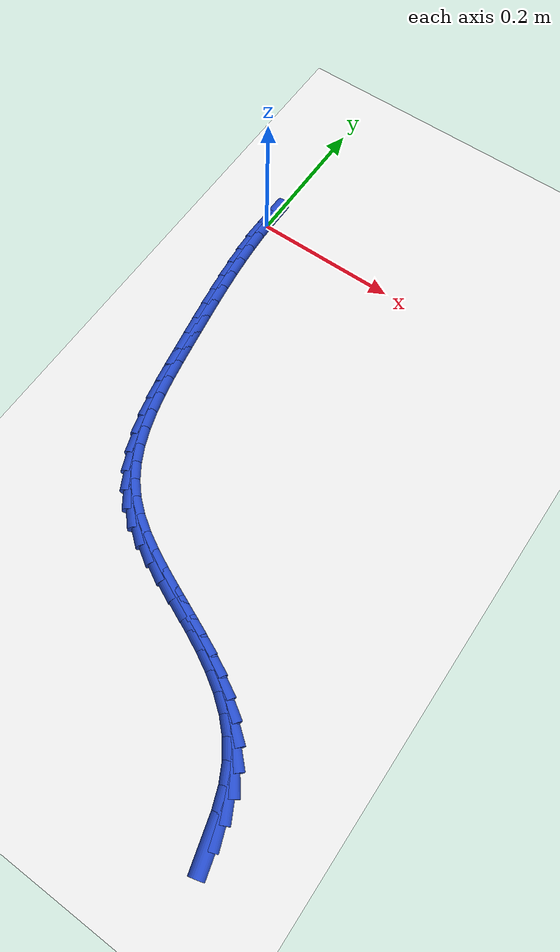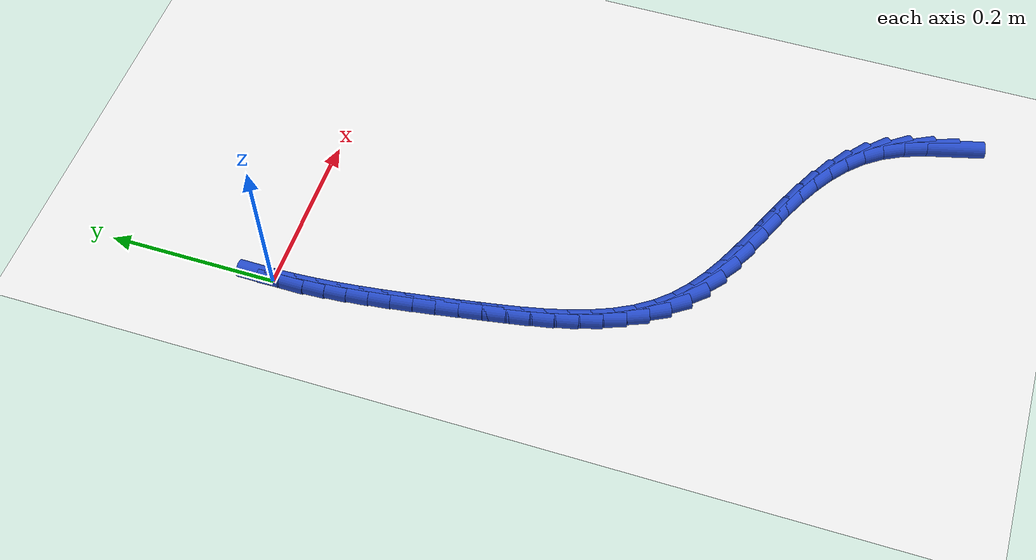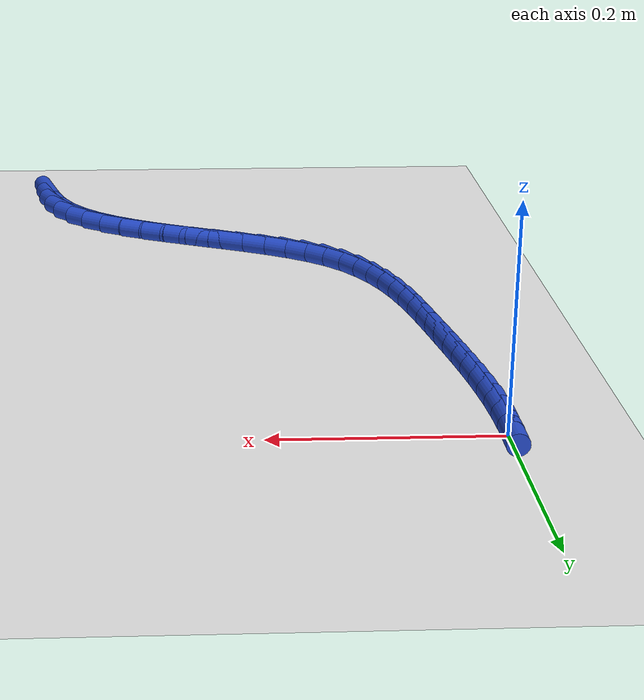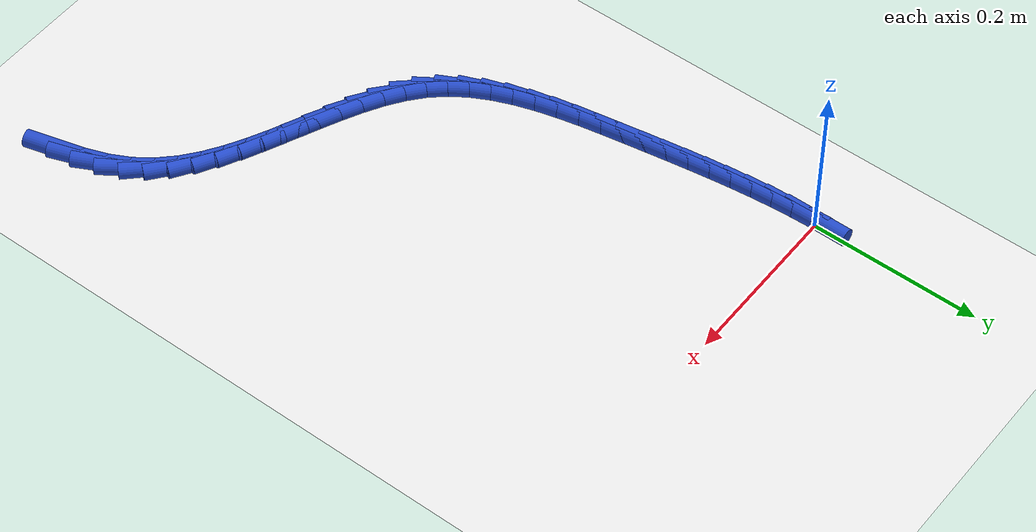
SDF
<sdf version="1.6">
 <world name="default">
  <model name="ground_plane">
   <static>1</static>
   <link name="link">
    <collision name="collision">
     <geometry><plane><normal>0 0 1</normal><size>100 100</size></plane></geometry>
     <surface><friction><ode><mu>100</mu><mu2>50</mu2></ode></friction></surface>
    </collision>
    <visual name="visual">
     <cast_shadows>0</cast_shadows>
     <geometry><plane><normal>0 0 1</normal><size>100 100</size></plane></geometry>
     <material>
      <script><uri>file://media/materials/scripts/gazebo.material</uri><name>Gazebo/WhiteGlow</name></script>
     </material>
    </visual>
   </link>
  </model>
  <model name="line">
   <link name="link_246">
    <pose>0.4147877214502893 -0.6989046707956664 0.01 0 1.57 -1.3147282547382568</pose>
    <collision name="collision">
     <geometry><cylinder><radius>0.01</radius><length>0.08</length></cylinder></geometry>
    </collision>
    <visual name="visual">
     <material>
      <script><name>Gazebo/Blue</name><uri>file://media/materials/scripts/gazebo.material</uri></script>
     </material>
     <geometry><cylinder><radius>0.01</radius><length>0.08</length></cylinder></geometry>
    </visual>
   </link>
   <link name="link_247">
    <pose>0.4074190213846468 -0.6707600676429514 0.01 0 1.57 -1.224963007741213</pose>
    <collision name="collision">
     <geometry><cylinder><radius>0.01</radius><length>0.08</length></cylinder></geometry>
    </collision>
    <visual name="visual">
     <material>
      <script><name>Gazebo/Blue</name><uri>file://media/materials/scripts/gazebo.material</uri></script>
     </material>
     <geometry><cylinder><radius>0.01</radius><length>0.08</length></cylinder></geometry>
    </visual>
   </link>
   <link name="link_248">
    <pose>0.397948434049088 -0.6444757891560651 0.01 0 1.57 -1.0963671185091795</pose>
    <collision name="collision">
     <geometry><cylinder><radius>0.01</radius><length>0.08</length></cylinder></geometry>
    </collision>
    <visual name="visual">
     <material>
      <script><name>Gazebo/Blue</name><uri>file://media/materials/scripts/gazebo.material</uri></script>
     </material>
     <geometry><cylinder><radius>0.01</radius><length>0.08</length></cylinder></geometry>
    </visual>
   </link>
   <link name="link_249">
    <pose>0.3857775104919784 -0.6207762273079381 0.01 0 1.57 -0.9403106625023065</pose>
    <collision name="collision">
     <geometry><cylinder><radius>0.01</radius><length>0.08</length></cylinder></geometry>
    </collision>
    <visual name="visual">
     <material>
      <script><name>Gazebo/Blue</name><uri>file://media/materials/scripts/gazebo.material</uri></script>
     </material>
     <geometry><cylinder><radius>0.01</radius><length>0.08</length></cylinder></geometry>
    </visual>
   </link>
   <link name="link_250">
    <pose>0.3706336356868376 -0.6000271810951412 0.01 0 1.57 -0.7953965708621923</pose>
    <collision name="collision">
     <geometry><cylinder><radius>0.01</radius><length>0.08</length></cylinder></geometry>
    </collision>
    <visual name="visual">
     <material>
      <script><name>Gazebo/Blue</name><uri>file://media/materials/scripts/gazebo.material</uri></script>
     </material>
     <geometry><cylinder><radius>0.01</radius><length>0.08</length></cylinder></geometry>
    </visual>
   </link>
   <link name="link_251">
    <pose>0.3528704698723867 -0.5819052090944088 0.01 0 1.57 -0.6726089075219118</pose>
    <collision name="collision">
     <geometry><cylinder><radius>0.01</radius><length>0.08</length></cylinder></geometry>
    </collision>
    <visual name="visual">
     <material>
      <script><name>Gazebo/Blue</name><uri>file://media/materials/scripts/gazebo.material</uri></script>
     </material>
     <geometry><cylinder><radius>0.01</radius><length>0.08</length></cylinder></geometry>
    </visual>
   </link>
   <link name="link_252">
    <pose>0.33291272353556356 -0.5660086763058944 0.01 0 1.57 -0.5747485906140026</pose>
    <collision name="collision">
     <geometry><cylinder><radius>0.01</radius><length>0.08</length></cylinder></geometry>
    </collision>
    <visual name="visual">
     <material>
      <script><name>Gazebo/Blue</name><uri>file://media/materials/scripts/gazebo.material</uri></script>
     </material>
     <geometry><cylinder><radius>0.01</radius><length>0.08</length></cylinder></geometry>
    </visual>
   </link>
   <link name="link_253">
    <pose>0.3111851071633075 -0.5519359477297521 0.01 0 1.57 -0.5015289717296727</pose>
    <collision name="collision">
     <geometry><cylinder><radius>0.01</radius><length>0.08</length></cylinder></geometry>
    </collision>
    <visual name="visual">
     <material>
      <script><name>Gazebo/Blue</name><uri>file://media/materials/scripts/gazebo.material</uri></script>
     </material>
     <geometry><cylinder><radius>0.01</radius><length>0.08</length></cylinder></geometry>
    </visual>
   </link>
   <link name="link_254">
    <pose>0.28811233124255625 -0.539285388366135 0.01 0 1.57 -0.45135003992694056</pose>
    <collision name="collision">
     <geometry><cylinder><radius>0.01</radius><length>0.08</length></cylinder></geometry>
    </collision>
    <visual name="visual">
     <material>
      <script><name>Gazebo/Blue</name><uri>file://media/materials/scripts/gazebo.material</uri></script>
     </material>
     <geometry><cylinder><radius>0.01</radius><length>0.08</length></cylinder></geometry>
    </visual>
   </link>
   <link name="link_255">
    <pose>0.26411910626024787 -0.527655363215197 0.01 0 1.57 -0.4225513968826254</pose>
    <collision name="collision">
     <geometry><cylinder><radius>0.01</radius><length>0.08</length></cylinder></geometry>
    </collision>
    <visual name="visual">
     <material>
      <script><name>Gazebo/Blue</name><uri>file://media/materials/scripts/gazebo.material</uri></script>
     </material>
     <geometry><cylinder><radius>0.01</radius><length>0.08</length></cylinder></geometry>
    </visual>
   </link>
   <link name="link_256">
    <pose>0.2396301427033208 -0.5166442372770913 0.01 0 1.57 -0.4140792082237176</pose>
    <collision name="collision">
     <geometry><cylinder><radius>0.01</radius><length>0.08</length></cylinder></geometry>
    </collision>
    <visual name="visual">
     <material>
      <script><name>Gazebo/Blue</name><uri>file://media/materials/scripts/gazebo.material</uri></script>
     </material>
     <geometry><cylinder><radius>0.01</radius><length>0.08</length></cylinder></geometry>
    </visual>
   </link>
   <link name="link_257">
    <pose>0.21507015105871324 -0.5058503755519717 0.01 0 1.57 -0.42578371415519617</pose>
    <collision name="collision">
     <geometry><cylinder><radius>0.01</radius><length>0.08</length></cylinder></geometry>
    </collision>
    <visual name="visual">
     <material>
      <script><name>Gazebo/Blue</name><uri>file://media/materials/scripts/gazebo.material</uri></script>
     </material>
     <geometry><cylinder><radius>0.01</radius><length>0.08</length></cylinder></geometry>
    </visual>
   </link>
   <link name="link_258">
    <pose>0.19086384181336327 -0.4948721430399913 0.01 0 1.57 -0.4585220222922525</pose>
    <collision name="collision">
     <geometry><cylinder><radius>0.01</radius><length>0.08</length></cylinder></geometry>
    </collision>
    <visual name="visual">
     <material>
      <script><name>Gazebo/Blue</name><uri>file://media/materials/scripts/gazebo.material</uri></script>
     </material>
     <geometry><cylinder><radius>0.01</radius><length>0.08</length></cylinder></geometry>
    </visual>
   </link>
   <link name="link_259">
    <pose>0.16743592545420938 -0.48330790474130425 0.01 0 1.57 -0.5141112055387586</pose>
    <collision name="collision">
     <geometry><cylinder><radius>0.01</radius><length>0.08</length></cylinder></geometry>
    </collision>
    <visual name="visual">
     <material>
      <script><name>Gazebo/Blue</name><uri>file://media/materials/scripts/gazebo.material</uri></script>
     </material>
     <geometry><cylinder><radius>0.01</radius><length>0.08</length></cylinder></geometry>
    </visual>
   </link>
   <link name="link_260">
    <pose>0.14521111246818957 -0.4707560256560635 0.01 0 1.57 -0.5950220393723967</pose>
    <collision name="collision">
     <geometry><cylinder><radius>0.01</radius><length>0.08</length></cylinder></geometry>
    </collision>
    <visual name="visual">
     <material>
      <script><name>Gazebo/Blue</name><uri>file://media/materials/scripts/gazebo.material</uri></script>
     </material>
     <geometry><cylinder><radius>0.01</radius><length>0.08</length></cylinder></geometry>
    </visual>
   </link>
   <link name="link_261">
    <pose>0.12461411334224151 -0.45681487078442246 0.01 0 1.57 -0.7035309989739501</pose>
    <collision name="collision">
     <geometry><cylinder><radius>0.01</radius><length>0.08</length></cylinder></geometry>
    </collision>
    <visual name="visual">
     <material>
      <script><name>Gazebo/Blue</name><uri>file://media/materials/scripts/gazebo.material</uri></script>
     </material>
     <geometry><cylinder><radius>0.01</radius><length>0.08</length></cylinder></geometry>
    </visual>
   </link>
   <link name="link_262">
    <pose>0.10606963856330485 -0.44108280512653547 0.01 0 1.57 -0.838602283269499</pose>
    <collision name="collision">
     <geometry><cylinder><radius>0.01</radius><length>0.08</length></cylinder></geometry>
    </collision>
    <visual name="visual">
     <material>
      <script><name>Gazebo/Blue</name><uri>file://media/materials/scripts/gazebo.material</uri></script>
     </material>
     <geometry><cylinder><radius>0.01</radius><length>0.08</length></cylinder></geometry>
    </visual>
   </link>
   <link name="link_263">
    <pose>0.08997878449989616 -0.4231817321295111 0.01 0 1.57 -0.9747074143699089</pose>
    <collision name="collision">
     <geometry><cylinder><radius>0.01</radius><length>0.08</length></cylinder></geometry>
    </collision>
    <visual name="visual">
     <material>
      <script><name>Gazebo/Blue</name><uri>file://media/materials/scripts/gazebo.material</uri></script>
     </material>
     <geometry><cylinder><radius>0.01</radius><length>0.08</length></cylinder></geometry>
    </visual>
   </link>
   <link name="link_264">
    <pose>0.07636315451384901 -0.40311183216143615 0.01 0 1.57 -1.0905757728185108</pose>
    <collision name="collision">
     <geometry><cylinder><radius>0.01</radius><length>0.08</length></cylinder></geometry>
    </collision>
    <visual name="visual">
     <material>
      <script><name>Gazebo/Blue</name><uri>file://media/materials/scripts/gazebo.material</uri></script>
     </material>
     <geometry><cylinder><radius>0.01</radius><length>0.08</length></cylinder></geometry>
    </visual>
   </link>
   <link name="link_265">
    <pose>0.06493823420084444 -0.3811784224018713 0.01 0 1.57 -1.1853698464484208</pose>
    <collision name="collision">
     <geometry><cylinder><radius>0.01</radius><length>0.08</length></cylinder></geometry>
    </collision>
    <visual name="visual">
     <material>
      <script><name>Gazebo/Blue</name><uri>file://media/materials/scripts/gazebo.material</uri></script>
     </material>
     <geometry><cylinder><radius>0.01</radius><length>0.08</length></cylinder></geometry>
    </visual>
   </link>
   <link name="link_266">
    <pose>0.05541078279730983 -0.3576955184260052 0.01 0 1.57 -1.2606038794214065</pose>
    <collision name="collision">
     <geometry><cylinder><radius>0.01</radius><length>0.08</length></cylinder></geometry>
    </collision>
    <visual name="visual">
     <material>
      <script><name>Gazebo/Blue</name><uri>file://media/materials/scripts/gazebo.material</uri></script>
     </material>
     <geometry><cylinder><radius>0.01</radius><length>0.08</length></cylinder></geometry>
    </visual>
   </link>
   <link name="link_267">
    <pose>0.04748755953967242 -0.33297713580902616 0.01 0 1.57 -1.318406552469889</pose>
    <collision name="collision">
     <geometry><cylinder><radius>0.01</radius><length>0.08</length></cylinder></geometry>
    </collision>
    <visual name="visual">
     <material>
      <script><name>Gazebo/Blue</name><uri>file://media/materials/scripts/gazebo.material</uri></script>
     </material>
     <geometry><cylinder><radius>0.01</radius><length>0.08</length></cylinder></geometry>
    </visual>
   </link>
   <link name="link_268">
    <pose>0.04087532366435955 -0.30733729012612254 0.01 0 1.57 -1.3607935195099103</pose>
    <collision name="collision">
     <geometry><cylinder><radius>0.01</radius><length>0.08</length></cylinder></geometry>
    </collision>
    <visual name="visual">
     <material>
      <script><name>Gazebo/Blue</name><uri>file://media/materials/scripts/gazebo.material</uri></script>
     </material>
     <geometry><cylinder><radius>0.01</radius><length>0.08</length></cylinder></geometry>
    </visual>
   </link>
   <link name="link_269">
    <pose>0.03528083440779849 -0.2810899969524828 0.01 0 1.57 -1.3893240456691693</pose>
    <collision name="collision">
     <geometry><cylinder><radius>0.01</radius><length>0.08</length></cylinder></geometry>
    </collision>
    <visual name="visual">
     <material>
      <script><name>Gazebo/Blue</name><uri>file://media/materials/scripts/gazebo.material</uri></script>
     </material>
     <geometry><cylinder><radius>0.01</radius><length>0.08</length></cylinder></geometry>
    </visual>
   </link>
   <link name="link_270">
    <pose>0.03041085100641642 -0.2545492718632944 0.01 0 1.57 -1.4049618539012512</pose>
    <collision name="collision">
     <geometry><cylinder><radius>0.01</radius><length>0.08</length></cylinder></geometry>
    </collision>
    <visual name="visual">
     <material>
      <script><name>Gazebo/Blue</name><uri>file://media/materials/scripts/gazebo.material</uri></script>
     </material>
     <geometry><cylinder><radius>0.01</radius><length>0.08</length></cylinder></geometry>
    </visual>
   </link>
   <link name="link_271">
    <pose>0.025972132696640903 -0.22802913043374753 0.01 0 1.57 -1.4093604078185398</pose>
    <collision name="collision">
     <geometry><cylinder><radius>0.01</radius><length>0.08</length></cylinder></geometry>
    </collision>
    <visual name="visual">
     <material>
      <script><name>Gazebo/Blue</name><uri>file://media/materials/scripts/gazebo.material</uri></script>
     </material>
     <geometry><cylinder><radius>0.01</radius><length>0.08</length></cylinder></geometry>
    </visual>
   </link>
   <link name="link_272">
    <pose>0.02170274079771202 -0.20181291828586834 0.01 0 1.57 -1.412669478393521</pose>
    <collision name="collision">
     <geometry><cylinder><radius>0.01</radius><length>0.08</length></cylinder></geometry>
    </collision>
    <visual name="visual">
     <material>
      <script><name>Gazebo/Blue</name><uri>file://media/materials/scripts/gazebo.material</uri></script>
     </material>
     <geometry><cylinder><radius>0.01</radius><length>0.08</length></cylinder></geometry>
    </visual>
   </link>
   <link name="link_273">
    <pose>0.01757880390408527 -0.17595072141408238 0.01 0 1.57 -1.4196818658588857</pose>
    <collision name="collision">
     <geometry><cylinder><radius>0.01</radius><length>0.08</length></cylinder></geometry>
    </collision>
    <visual name="visual">
     <material>
      <script><name>Gazebo/Blue</name><uri>file://media/materials/scripts/gazebo.material</uri></script>
     </material>
     <geometry><cylinder><radius>0.01</radius><length>0.08</length></cylinder></geometry>
    </visual>
   </link>
   <link name="link_274">
    <pose>0.013685842724051794 -0.15038544281711477 0.01 0 1.57 -1.4305292952999575</pose>
    <collision name="collision">
     <geometry><cylinder><radius>0.01</radius><length>0.08</length></cylinder></geometry>
    </collision>
    <visual name="visual">
     <material>
      <script><name>Gazebo/Blue</name><uri>file://media/materials/scripts/gazebo.material</uri></script>
     </material>
     <geometry><cylinder><radius>0.01</radius><length>0.08</length></cylinder></geometry>
    </visual>
   </link>
   <link name="link_275">
    <pose>0.010109954299945345 -0.125059420798421 0.01 0 1.57 -1.4452798585125417</pose>
    <collision name="collision">
     <geometry><cylinder><radius>0.01</radius><length>0.08</length></cylinder></geometry>
    </collision>
    <visual name="visual">
     <material>
      <script><name>Gazebo/Blue</name><uri>file://media/materials/scripts/gazebo.material</uri></script>
     </material>
     <geometry><cylinder><radius>0.01</radius><length>0.08</length></cylinder></geometry>
    </visual>
   </link>
   <link name="link_276">
    <pose>0.006937235674099682 -0.09991499366145651 0.01 0 1.57 -1.4639545779873477</pose>
    <collision name="collision">
     <geometry><cylinder><radius>0.01</radius><length>0.08</length></cylinder></geometry>
    </collision>
    <visual name="visual">
     <material>
      <script><name>Gazebo/Blue</name><uri>file://media/materials/scripts/gazebo.material</uri></script>
     </material>
     <geometry><cylinder><radius>0.01</radius><length>0.08</length></cylinder></geometry>
    </visual>
   </link>
   <link name="link_277">
    <pose>0.004253783888848565 -0.07489449970967679 0.01 0 1.57 -1.486518227849693</pose>
    <collision name="collision">
     <geometry><cylinder><radius>0.01</radius><length>0.08</length></cylinder></geometry>
    </collision>
    <visual name="visual">
     <material>
      <script><name>Gazebo/Blue</name><uri>file://media/materials/scripts/gazebo.material</uri></script>
     </material>
     <geometry><cylinder><radius>0.01</radius><length>0.08</length></cylinder></geometry>
    </visual>
   </link>
   <link name="link_278">
    <pose>0.0021456959865257435 -0.04994027724653729 0.01 0 1.57 -1.512869965176155</pose>
    <collision name="collision">
     <geometry><cylinder><radius>0.01</radius><length>0.08</length></cylinder></geometry>
    </collision>
    <visual name="visual">
     <material>
      <script><name>Gazebo/Blue</name><uri>file://media/materials/scripts/gazebo.material</uri></script>
     </material>
     <geometry><cylinder><radius>0.01</radius><length>0.08</length></cylinder></geometry>
    </visual>
   </link>
   <link name="link_279">
    <pose>0.0006990690094649463 -0.02499466457549278 0.01 0 1.57 -1.5428348868380852</pose>
    <collision name="collision">
     <geometry><cylinder><radius>0.01</radius><length>0.08</length></cylinder></geometry>
    </collision>
    <visual name="visual">
     <material>
      <script><name>Gazebo/Blue</name><uri>file://media/materials/scripts/gazebo.material</uri></script>
     </material>
     <geometry><cylinder><radius>0.01</radius><length>0.08</length></cylinder></geometry>
    </visual>
   </link>
   <link name="link_280">
    <pose>1.951563910473908e-17 -2.3592239273284576e-16 0.01 0 1.57 1.5654346805196702</pose>
    <collision name="collision">
     <geometry><cylinder><radius>0.01</radius><length>0.08</length></cylinder></geometry>
    </collision>
    <visual name="visual">
     <material>
      <script><name>Gazebo/Blue</name><uri>file://media/materials/scripts/gazebo.material</uri></script>
     </material>
     <geometry><cylinder><radius>0.01</radius><length>0.08</length></cylinder></geometry>
    </visual>
   </link>
  </model>
 </world>
</sdf>
